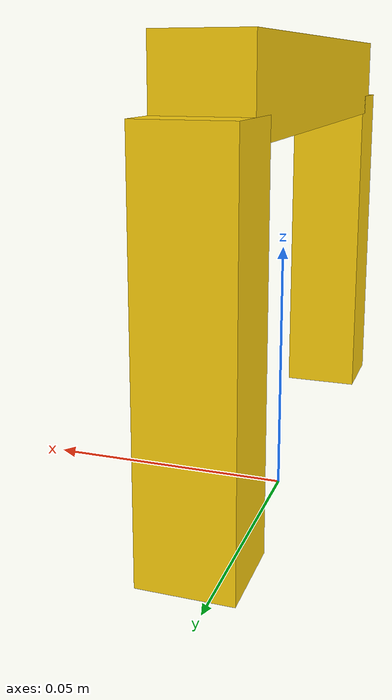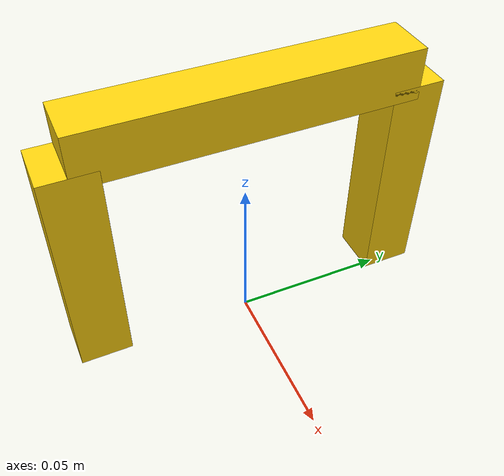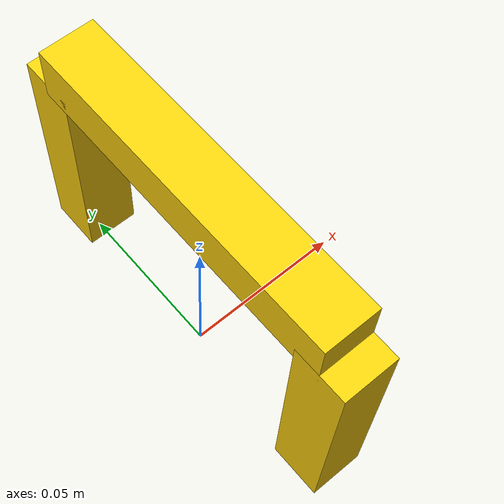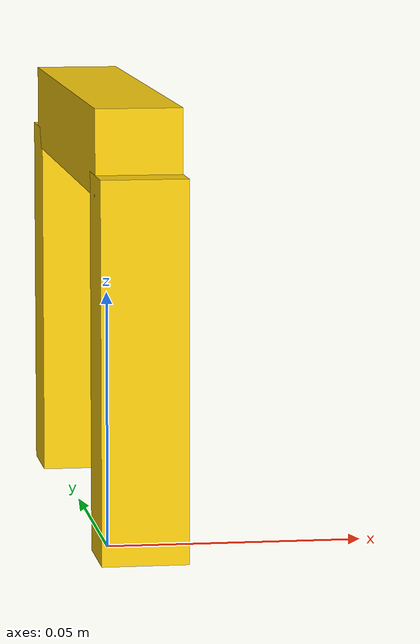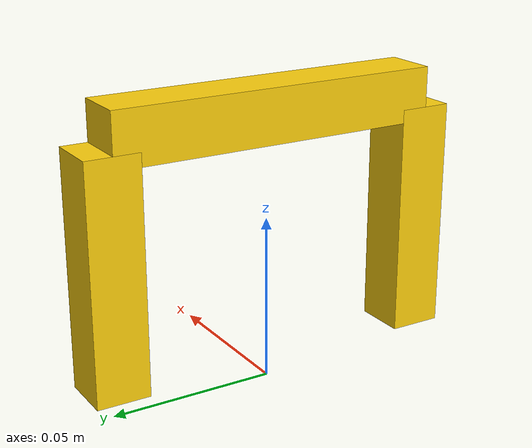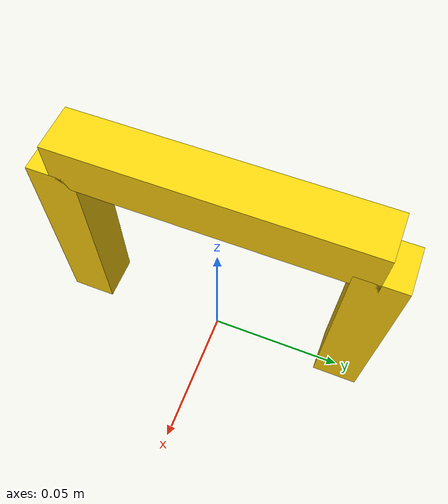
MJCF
<mujoco>
    <compiler angle="radian" inertiafromgeom="auto" inertiagrouprange="4 5"/>
    <asset>
        <texture name="T_boxmetal" type="cube" file="../textures/metal1.png"/>
        <texture name="T_boxwood" type="cube" file="../textures/wood1.png"/>
        <material name="box_col" rgba="0.3 0.3 1.0 0.5" shininess="0" specular="0"/>
        <material name="box_red" rgba=".8 0 0 1" shininess="1" reflectance=".7" specular=".5"/>
        <material name="box_blue" rgba="0 0 .8 1" shininess="1" reflectance=".7" specular=".5"/>
        <material name="box_yellow" rgba="1.0 0.82 0.05 1" shininess="1" reflectance=".4" specular=".35"/>
        <material name="box_metal" rgba=".35 .35 .35 1" texture="T_boxmetal" shininess="1" reflectance=".7" specular=".5"/>
        <material name="box_wood" texture="T_boxwood" shininess="1" reflectance=".7" specular=".5"/>

        <mesh file="../objects/meshes/bin/bin.stl" name="bin"/>
        <mesh file="../objects/meshes/box/boxtop.stl" name="boxtop"/>
        <mesh file="../objects/meshes/box/boxhandle.stl" name="boxhandle"/>
    </asset>

    <default>
      <default class="box_base">
          <joint armature="0.001" damping="2" limited="true"/>
          <geom conaffinity="0" contype="0" group="1" type="mesh"/>
          <default class="box_viz">
              <geom condim="4" type="mesh"/>
          </default>
          <default class="box_col">
              <geom conaffinity="1" condim="3" contype="0" group="4" material="box_col" solimp="0.99 0.99 0.01" solref="0.01 1"/>
          </default>
          <default class="top_col">
              <geom conaffinity="1" condim="4" contype="1" group="4" material="box_yellow" solimp="0.99 0.99 0.01" solref="0.01 1"/>
          </default>
      </default>
    </default>

    <worldbody>
        <body name="boxbodytop" pos="0. 0 0">
            <freejoint/>
            <body name="top_link" pos="0 0 0">
                <body name="top_link2" pos="0 0 0.09"></body>
                <!-- the commented out sections are appearing as a solid rectangle rather than a handle, replaced with box  -->
                <geom material="box_yellow" euler="1.57 0.0 0.0" pos="0 0 0.082" size="0.008 0.008 .05" type="box"/>
                <geom material="box_yellow" pos="0 -0.05 0.043" size="0.008 0.008 .035" type="box" />
                <geom material="box_yellow" pos="0 0.05 0.043" size="0.008 0.008 .035" type="box"/>

                <geom class="top_col" pos="0.11 -0.0 -0.008" size="0.005 0.115 0.008" type="box" mass=".02"/>
                <geom class="top_col" pos="0.0 -0.0 0.003" size="0.115 0.115 0.003" type="box" mass=".02"/>
                <geom class="top_col" pos="-0.11 -0.0 -0.008" size="0.005 0.115 0.008" type="box" mass=".02"/>
                <geom class="top_col" pos="0.0 -0.11 -0.008" size="0.115 0.005 0.008" type="box" mass=".02"/>
                <geom class="top_col" pos="0.0 0.11 -0.008" size="0.115 0.005 0.008" type="box" mass=".02"/>
                <geom class="top_col" euler="1.57 0.0 0.0" pos="0 0 0.082" size="0.008 0.05" type="capsule" mass=".05"/>
                <geom class="top_col" pos="0 -0.05 0.043" size="0.008 0.035" type="capsule" mass=".05"/>
                <geom class="top_col" pos="0 0.05 0.043" size="0.008 0.035" type="capsule" mass=".05"/>
            </body>
        </body>
    </worldbody>
</mujoco>
